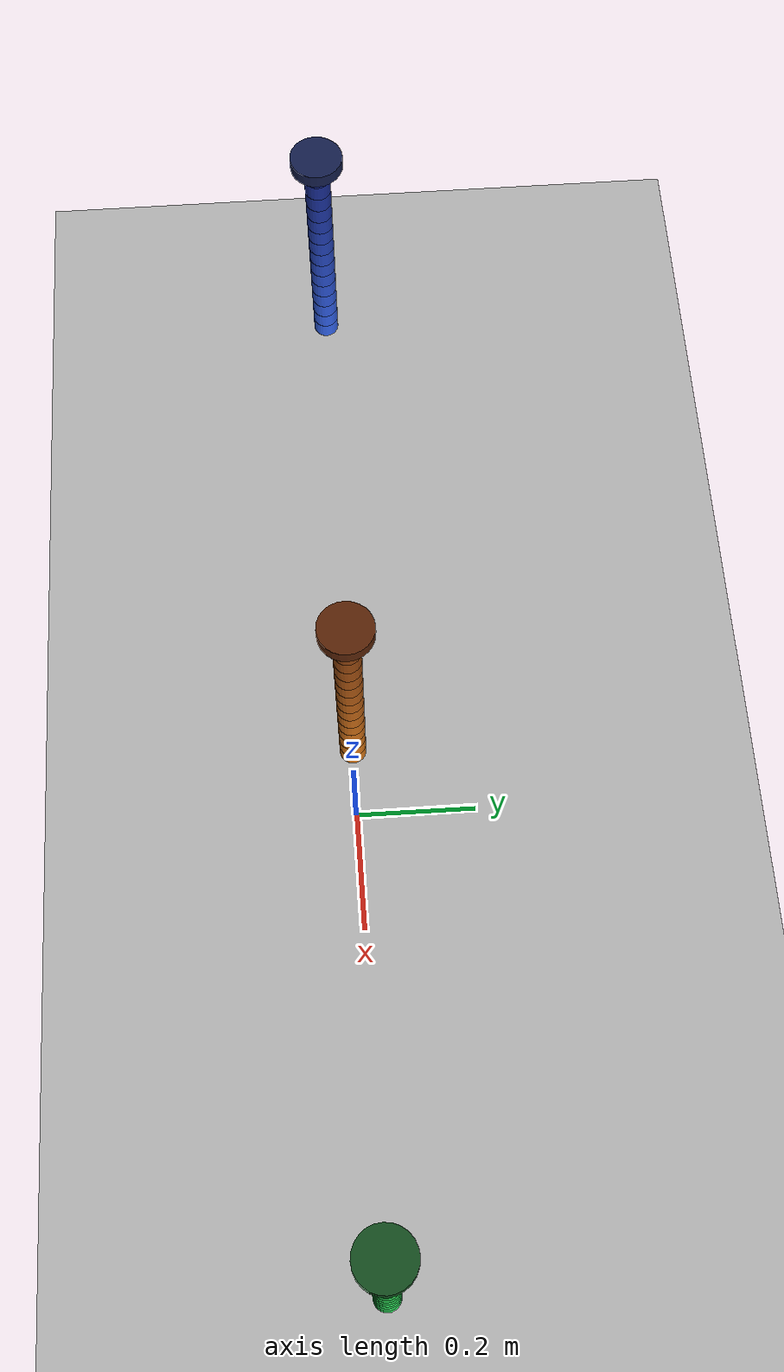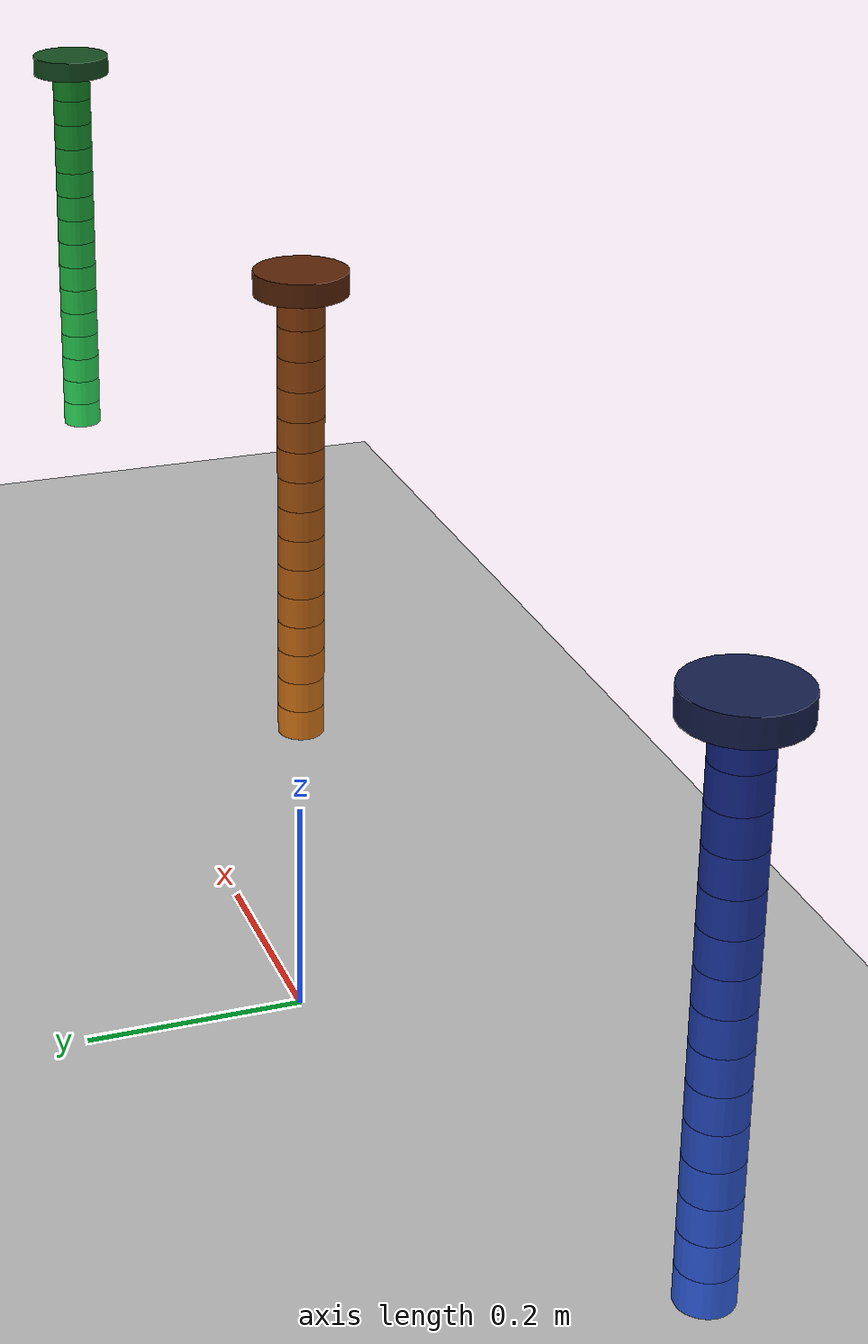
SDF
<?xml version="1.0" encoding="UTF-8"?>
<sdf version="1.9">
  <world name="continuum_arm_side_by_side">
    <physics type="ode">
      <max_step_size>0.001</max_step_size>
      <real_time_factor>1.0</real_time_factor>
      <real_time_update_rate>1000</real_time_update_rate>
    </physics>
    <plugin name="gz::sim::systems::Physics" filename="gz-sim-physics-system"/>
    <plugin name="gz::sim::systems::UserCommands" filename="gz-sim-user-commands-system"/>
    <plugin name="gz::sim::systems::SceneBroadcaster" filename="gz-sim-scene-broadcaster-system"/>
    <plugin filename="gz-sim-pose-publisher-system" name="gz::sim::systems::PosePublisher">
      <publish_link_pose>true</publish_link_pose>
      <publish_model_pose>true</publish_model_pose>
      <use_pose_vector_msg>true</use_pose_vector_msg>
      <static_publisher>false</static_publisher>
      <update_frequency>60</update_frequency>
    </plugin>

    <gravity>0 0 -9.8</gravity>

    <light name="sun" type="directional">
      <pose>0 0 10 0 0 0</pose>
      <direction>0.3 0.3 -0.9</direction>
      <diffuse>0.9 0.9 0.9 1</diffuse>
    </light>

    <gui fullscreen="false">
      <plugin filename="MinimalScene" name="3D View">
        <gz-gui>
          <title>3D View</title>
          <property type="bool" key="showTitleBar">false</property>
          <property type="string" key="state">docked</property>
        </gz-gui>
        <engine>ogre2</engine>
        <scene>scene</scene>
        <ambient_light>0.4 0.4 0.4</ambient_light>
        <background_color>0.8 0.8 0.8</background_color>
        <camera_pose>0 -2.6 0.85 0 0.2 1.5708</camera_pose>
        <camera_clip>
          <near>0.05</near>
          <far>5000</far>
        </camera_clip>
      </plugin>
      <plugin filename="InteractiveViewControl" name="Interactive view control">
        <gz-gui>
          <property key="resizable" type="bool">false</property>
          <property key="width" type="double">5</property>
          <property key="height" type="double">5</property>
          <property key="state" type="string">floating</property>
          <property key="showTitleBar" type="bool">false</property>
        </gz-gui>
      </plugin>
      <plugin filename="GzSceneManager" name="Scene Manager">
        <gz-gui>
          <property key="resizable" type="bool">false</property>
          <property key="width" type="double">5</property>
          <property key="height" type="double">5</property>
          <property key="state" type="string">floating</property>
          <property key="showTitleBar" type="bool">false</property>
        </gz-gui>
      </plugin>
      <plugin name="World control" filename="WorldControl">
        <gz-gui>
          <title>World control</title>
          <property type="bool" key="showTitleBar">0</property>
          <property type="bool" key="resizable">0</property>
          <property type="double" key="height">72</property>
          <property type="double" key="width">121</property>
          <property type="double" key="z">1</property>
          <property type="string" key="state">floating</property>
          <anchors target="3D View">
            <line own="left" target="left"/>
            <line own="bottom" target="bottom"/>
          </anchors>
        </gz-gui>
        <play_pause>1</play_pause>
        <step>1</step>
        <start_paused>0</start_paused>
      </plugin>
      <plugin name="World stats" filename="WorldStats">
        <gz-gui>
          <title>World stats</title>
          <property type="bool" key="showTitleBar">0</property>
          <property type="bool" key="resizable">0</property>
          <property type="double" key="height">110</property>
          <property type="double" key="width">290</property>
          <property type="double" key="z">1</property>
          <property type="string" key="state">floating</property>
          <anchors target="3D View">
            <line own="right" target="right"/>
            <line own="bottom" target="bottom"/>
          </anchors>
        </gz-gui>
        <sim_time>1</sim_time>
        <real_time>1</real_time>
        <real_time_factor>1</real_time_factor>
        <iterations>1</iterations>
      </plugin>
    </gui>

    <model name="ground_plane">
      <static>true</static>
      <link name="link">
        <collision name="collision">
          <geometry><plane><normal>0 0 1</normal><size>10 10</size></plane></geometry>
        </collision>
        <visual name="visual">
          <geometry><plane><normal>0 0 1</normal><size>10 10</size></plane></geometry>
          <material><ambient>0.7 0.7 0.7 1</ambient></material>
        </visual>
      </link>
    </model>

    <model name="continuum_arm_pcc_rig">
      <pose>-0.8 0 0.7 0 0 0</pose>
      <static>false</static>
      <include merge='true'>
        <uri>model://continuum_arm_pcc</uri>
      </include>
      <joint name="world_mount_joint" type="fixed">
        <parent>world</parent>
        <child>continuum_arm_pcc/base_cyl</child>
      </joint>
    </model>

    <model name="continuum_arm_cosserat_rig">
      <pose>0 0 0.7 0 0 0</pose>
      <static>false</static>
      <include merge='true'>
        <uri>model://continuum_arm_cosserat</uri>
      </include>
      <joint name="world_mount_joint" type="fixed">
        <parent>world</parent>
        <child>continuum_arm_cosserat/base_cyl</child>
      </joint>
    </model>

    <model name="continuum_arm_rbsn_rig">
      <pose>0.8 0 0.7 0 0 0</pose>
      <static>false</static>
      <include merge='true'>
        <uri>model://continuum_arm_rbsn</uri>
      </include>
      <joint name="world_mount_joint" type="fixed">
        <parent>world</parent>
        <child>continuum_arm_rbsn/base_cyl</child>
      </joint>
    </model>
  </world>
</sdf>

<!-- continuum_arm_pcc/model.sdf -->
<sdf version='1.9'>
  <model name='continuum_arm_pcc'>
    <self_collide>false</self_collide>
    <static>false</static>

    <link name="continuum_arm_pcc/base_cyl">
      <pose>0 0 -0.01000 0 0 0</pose>
      <gravity>true</gravity>
      <self_collide>false</self_collide>
      <velocity_decay/>
      <inertial>
        <mass>0.078431</mass>
        <inertia>
          <ixx>3.398693e-05</ixx>
          <iyy>3.398693e-05</iyy>
          <izz>6.274510e-05</izz>
        </inertia>
      </inertial>
      <collision name="continuum_arm_pcc/base_cyl_collision">
        <geometry>
          <cylinder><radius>0.04</radius><length>0.02</length></cylinder>
        </geometry>
      </collision>
      <visual name="continuum_arm_pcc/base_cyl_visual">
        <geometry>
          <cylinder><radius>0.04</radius><length>0.02</length></cylinder>
        </geometry>
        <material>
          <ambient>0.05 0.08 0.20 1</ambient>
          <diffuse>0.08 0.12 0.30 1</diffuse>
          <specular>0.2 0.2 0.2 1</specular>
        </material>
      </visual>
    </link>
    <!-- Segment 1/15 -->
    <link name="continuum_arm_pcc/segment_1">
      <pose>0 0 -0.03333 0 0 0</pose>
      <gravity>true</gravity>
      <self_collide>false</self_collide>
      <velocity_decay/>
      <inertial>
        <mass>0.011438</mass>
        <inertia>
          <ixx>2.464975e-06</ixx>
          <iyy>2.464975e-06</iyy>
          <izz>3.574346e-06</izz>
        </inertia>
      </inertial>
      <collision name="continuum_arm_pcc/segment_1_collision">
        <geometry>
          <cylinder><radius>0.02</radius><length>0.02666666666666667</length></cylinder>
        </geometry>
      </collision>
      <visual name="continuum_arm_pcc/segment_1_visual">
        <geometry>
          <cylinder><radius>0.02</radius><length>0.02666666666666667</length></cylinder>
        </geometry>
        <material>
          <ambient>0.050 0.080 0.350 1</ambient>
          <diffuse>0.080 0.150 0.550 1</diffuse>
          <specular>0.2 0.2 0.2 1</specular>
        </material>
      </visual>
    </link>
    <joint name="continuum_arm_pcc/joint_1" type="universal">
      <parent>continuum_arm_pcc/base_cyl</parent>
      <child>continuum_arm_pcc/segment_1</child>
      <pose>0 0 0.01333 0 0 0</pose>
      <axis>
        <xyz>1 0 0</xyz>
        <limit>
          <lower>-0.8</lower>
          <upper>0.8</upper>
          <effort>0.24</effort>
          <velocity>5.0</velocity>
        </limit>
        <dynamics>
          <spring_stiffness>1.61068</spring_stiffness>
          <spring_reference>0.0</spring_reference>
          <damping>0.08</damping>
        </dynamics>
      </axis>
      <axis2>
        <xyz>0 1 0</xyz>
        <limit>
          <lower>-0.8</lower>
          <upper>0.8</upper>
          <effort>0.24</effort>
          <velocity>5.0</velocity>
        </limit>
        <dynamics>
          <spring_stiffness>1.61068</spring_stiffness>
          <spring_reference>0.0</spring_reference>
          <damping>0.08</damping>
        </dynamics>
      </axis2>
    </joint>
    <!-- Segment 2/15 -->
    <link name="continuum_arm_pcc/segment_2">
      <pose>0 0 -0.06000 0 0 0</pose>
      <gravity>true</gravity>
      <self_collide>false</self_collide>
      <velocity_decay/>
      <inertial>
        <mass>0.011438</mass>
        <inertia>
          <ixx>2.464975e-06</ixx>
          <iyy>2.464975e-06</iyy>
          <izz>3.574346e-06</izz>
        </inertia>
      </inertial>
      <collision name="continuum_arm_pcc/segment_2_collision">
        <geometry>
          <cylinder><radius>0.02</radius><length>0.02666666666666667</length></cylinder>
        </geometry>
      </collision>
      <visual name="continuum_arm_pcc/segment_2_visual">
        <geometry>
          <cylinder><radius>0.02</radius><length>0.02666666666666667</length></cylinder>
        </geometry>
        <material>
          <ambient>0.057 0.093 0.382 1</ambient>
          <diffuse>0.089 0.168 0.579 1</diffuse>
          <specular>0.2 0.2 0.2 1</specular>
        </material>
      </visual>
    </link>
    <joint name="continuum_arm_pcc/joint_2" type="universal">
      <parent>continuum_arm_pcc/segment_1</parent>
      <child>continuum_arm_pcc/segment_2</child>
      <pose>0 0 0.01333 0 0 0</pose>
      <axis>
        <xyz>1 0 0</xyz>
        <limit>
          <lower>-0.8</lower>
          <upper>0.8</upper>
          <effort>0.24</effort>
          <velocity>5.0</velocity>
        </limit>
        <dynamics>
          <spring_stiffness>1.61068</spring_stiffness>
          <spring_reference>0.0</spring_reference>
          <damping>0.08</damping>
        </dynamics>
      </axis>
      <axis2>
        <xyz>0 1 0</xyz>
        <limit>
          <lower>-0.8</lower>
          <upper>0.8</upper>
          <effort>0.24</effort>
          <velocity>5.0</velocity>
        </limit>
        <dynamics>
          <spring_stiffness>1.61068</spring_stiffness>
          <spring_reference>0.0</spring_reference>
          <damping>0.08</damping>
        </dynamics>
      </axis2>
    </joint>
    <!-- Segment 3/15 -->
    <link name="continuum_arm_pcc/segment_3">
      <pose>0 0 -0.08667 0 0 0</pose>
      <gravity>true</gravity>
      <self_collide>false</self_collide>
      <velocity_decay/>
      <inertial>
        <mass>0.011438</mass>
        <inertia>
          <ixx>2.464975e-06</ixx>
          <iyy>2.464975e-06</iyy>
          <izz>3.574346e-06</izz>
        </inertia>
      </inertial>
      <collision name="continuum_arm_pcc/segment_3_collision">
        <geometry>
          <cylinder><radius>0.02</radius><length>0.02666666666666667</length></cylinder>
        </geometry>
      </collision>
      <visual name="continuum_arm_pcc/segment_3_visual">
        <geometry>
          <cylinder><radius>0.02</radius><length>0.02666666666666667</length></cylinder>
        </geometry>
        <material>
          <ambient>0.064 0.106 0.414 1</ambient>
          <diffuse>0.097 0.186 0.607 1</diffuse>
          <specular>0.2 0.2 0.2 1</specular>
        </material>
      </visual>
    </link>
    <joint name="continuum_arm_pcc/joint_3" type="universal">
      <parent>continuum_arm_pcc/segment_2</parent>
      <child>continuum_arm_pcc/segment_3</child>
      <pose>0 0 0.01333 0 0 0</pose>
      <axis>
        <xyz>1 0 0</xyz>
        <limit>
          <lower>-0.8</lower>
          <upper>0.8</upper>
          <effort>0.24</effort>
          <velocity>5.0</velocity>
        </limit>
        <dynamics>
          <spring_stiffness>1.61068</spring_stiffness>
          <spring_reference>0.0</spring_reference>
          <damping>0.08</damping>
        </dynamics>
      </axis>
      <axis2>
        <xyz>0 1 0</xyz>
        <limit>
          <lower>-0.8</lower>
          <upper>0.8</upper>
          <effort>0.24</effort>
          <velocity>5.0</velocity>
        </limit>
        <dynamics>
          <spring_stiffness>1.61068</spring_stiffness>
          <spring_reference>0.0</spring_reference>
          <damping>0.08</damping>
        </dynamics>
      </axis2>
    </joint>
    <!-- Segment 4/15 -->
    <link name="continuum_arm_pcc/segment_4">
      <pose>0 0 -0.11333 0 0 0</pose>
      <gravity>true</gravity>
      <self_collide>false</self_collide>
      <velocity_decay/>
      <inertial>
        <mass>0.011438</mass>
        <inertia>
          <ixx>2.464975e-06</ixx>
          <iyy>2.464975e-06</iyy>
          <izz>3.574346e-06</izz>
        </inertia>
      </inertial>
      <collision name="continuum_arm_pcc/segment_4_collision">
        <geometry>
          <cylinder><radius>0.02</radius><length>0.02666666666666667</length></cylinder>
        </geometry>
      </collision>
      <visual name="continuum_arm_pcc/segment_4_visual">
        <geometry>
          <cylinder><radius>0.02</radius><length>0.02666666666666667</length></cylinder>
        </geometry>
        <material>
          <ambient>0.071 0.119 0.446 1</ambient>
          <diffuse>0.106 0.204 0.636 1</diffuse>
          <specular>0.2 0.2 0.2 1</specular>
        </material>
      </visual>
    </link>
    <joint name="continuum_arm_pcc/joint_4" type="universal">
      <parent>continuum_arm_pcc/segment_3</parent>
      <child>continuum_arm_pcc/segment_4</child>
      <pose>0 0 0.01333 0 0 0</pose>
      <axis>
        <xyz>1 0 0</xyz>
        <limit>
          <lower>-0.8</lower>
          <upper>0.8</upper>
          <effort>0.24</effort>
          <velocity>5.0</velocity>
        </limit>
        <dynamics>
          <spring_stiffness>1.61068</spring_stiffness>
          <spring_reference>0.0</spring_reference>
          <damping>0.08</damping>
        </dynamics>
      </axis>
      <axis2>
        <xyz>0 1 0</xyz>
        <limit>
          <lower>-0.8</lower>
          <upper>0.8</upper>
          <effort>0.24</effort>
          <velocity>5.0</velocity>
        </limit>
        <dynamics>
          <spring_stiffness>1.61068</spring_stiffness>
          <spring_reference>0.0</spring_reference>
          <damping>0.08</damping>
        </dynamics>
      </axis2>
    </joint>
    <!-- Segment 5/15 -->
    <link name="continuum_arm_pcc/segment_5">
      <pose>0 0 -0.14000 0 0 0</pose>
      <gravity>true</gravity>
      <self_collide>false</self_collide>
      <velocity_decay/>
      <inertial>
        <mass>0.011438</mass>
        <inertia>
          <ixx>2.464975e-06</ixx>
          <iyy>2.464975e-06</iyy>
          <izz>3.574346e-06</izz>
        </inertia>
      </inertial>
      <collision name="continuum_arm_pcc/segment_5_collision">
        <geometry>
          <cylinder><radius>0.02</radius><length>0.02666666666666667</length></cylinder>
        </geometry>
      </collision>
      <visual name="continuum_arm_pcc/segment_5_visual">
        <geometry>
          <cylinder><radius>0.02</radius><length>0.02666666666666667</length></cylinder>
        </geometry>
        <material>
          <ambient>0.079 0.131 0.479 1</ambient>
          <diffuse>0.114 0.221 0.664 1</diffuse>
          <specular>0.2 0.2 0.2 1</specular>
        </material>
      </visual>
    </link>
    <joint name="continuum_arm_pcc/joint_5" type="universal">
      <parent>continuum_arm_pcc/segment_4</parent>
      <child>continuum_arm_pcc/segment_5</child>
      <pose>0 0 0.01333 0 0 0</pose>
      <axis>
        <xyz>1 0 0</xyz>
        <limit>
          <lower>-0.8</lower>
          <upper>0.8</upper>
          <effort>0.24</effort>
          <velocity>5.0</velocity>
        </limit>
        <dynamics>
          <spring_stiffness>1.61068</spring_stiffness>
          <spring_reference>0.0</spring_reference>
          <damping>0.08</damping>
        </dynamics>
      </axis>
      <axis2>
        <xyz>0 1 0</xyz>
        <limit>
          <lower>-0.8</lower>
          <upper>0.8</upper>
          <effort>0.24</effort>
          <velocity>5.0</velocity>
        </limit>
        <dynamics>
          <spring_stiffness>1.61068</spring_stiffness>
          <spring_reference>0.0</spring_reference>
          <damping>0.08</damping>
        </dynamics>
      </axis2>
    </joint>
    <!-- Segment 6/15 -->
    <link name="continuum_arm_pcc/segment_6">
      <pose>0 0 -0.16667 0 0 0</pose>
      <gravity>true</gravity>
      <self_collide>false</self_collide>
      <velocity_decay/>
      <inertial>
        <mass>0.011438</mass>
        <inertia>
          <ixx>2.464975e-06</ixx>
          <iyy>2.464975e-06</iyy>
          <izz>3.574346e-06</izz>
        </inertia>
      </inertial>
      <collision name="continuum_arm_pcc/segment_6_collision">
        <geometry>
          <cylinder><radius>0.02</radius><length>0.02666666666666667</length></cylinder>
        </geometry>
      </collision>
      <visual name="continuum_arm_pcc/segment_6_visual">
        <geometry>
          <cylinder><radius>0.02</radius><length>0.02666666666666667</length></cylinder>
        </geometry>
        <material>
          <ambient>0.086 0.144 0.511 1</ambient>
          <diffuse>0.123 0.239 0.693 1</diffuse>
          <specular>0.2 0.2 0.2 1</specular>
        </material>
      </visual>
    </link>
    <joint name="continuum_arm_pcc/joint_6" type="universal">
      <parent>continuum_arm_pcc/segment_5</parent>
      <child>continuum_arm_pcc/segment_6</child>
      <pose>0 0 0.01333 0 0 0</pose>
      <axis>
        <xyz>1 0 0</xyz>
        <limit>
          <lower>-0.8</lower>
          <upper>0.8</upper>
          <effort>0.24</effort>
          <velocity>5.0</velocity>
        </limit>
        <dynamics>
          <spring_stiffness>1.61068</spring_stiffness>
          <spring_reference>0.0</spring_reference>
          <damping>0.08</damping>
        </dynamics>
      </axis>
      <axis2>
        <xyz>0 1 0</xyz>
        <limit>
          <lower>-0.8</lower>
          <upper>0.8</upper>
          <effort>0.24</effort>
          <velocity>5.0</velocity>
        </limit>
        <dynamics>
          <spring_stiffness>1.61068</spring_stiffness>
          <spring_reference>0.0</spring_reference>
          <damping>0.08</damping>
        </dynamics>
      </axis2>
    </joint>
    <!-- Segment 7/15 -->
    <link name="continuum_arm_pcc/segment_7">
      <pose>0 0 -0.19333 0 0 0</pose>
      <gravity>true</gravity>
      <self_collide>false</self_collide>
      <velocity_decay/>
      <inertial>
        <mass>0.011438</mass>
        <inertia>
          <ixx>2.464975e-06</ixx>
          <iyy>2.464975e-06</iyy>
          <izz>3.574346e-06</izz>
        </inertia>
      </inertial>
      <collision name="continuum_arm_pcc/segment_7_collision">
        <geometry>
          <cylinder><radius>0.02</radius><length>0.02666666666666667</length></cylinder>
        </geometry>
      </collision>
      <visual name="continuum_arm_pcc/segment_7_visual">
        <geometry>
          <cylinder><radius>0.02</radius><length>0.02666666666666667</length></cylinder>
        </geometry>
        <material>
          <ambient>0.093 0.157 0.543 1</ambient>
          <diffuse>0.131 0.257 0.721 1</diffuse>
          <specular>0.2 0.2 0.2 1</specular>
        </material>
      </visual>
    </link>
    <joint name="continuum_arm_pcc/joint_7" type="universal">
      <parent>continuum_arm_pcc/segment_6</parent>
      <child>continuum_arm_pcc/segment_7</child>
      <pose>0 0 0.01333 0 0 0</pose>
      <axis>
        <xyz>1 0 0</xyz>
        <limit>
          <lower>-0.8</lower>
          <upper>0.8</upper>
          <effort>0.24</effort>
          <velocity>5.0</velocity>
        </limit>
        <dynamics>
          <spring_stiffness>1.61068</spring_stiffness>
          <spring_reference>0.0</spring_reference>
          <damping>0.08</damping>
        </dynamics>
      </axis>
      <axis2>
        <xyz>0 1 0</xyz>
        <limit>
          <lower>-0.8</lower>
          <upper>0.8</upper>
          <effort>0.24</effort>
          <velocity>5.0</velocity>
        </limit>
        <dynamics>
          <spring_stiffness>1.61068</spring_stiffness>
          <spring_reference>0.0</spring_reference>
          <damping>0.08</damping>
        </dynamics>
      </axis2>
    </joint>
    <!-- Segment 8/15 -->
    <link name="continuum_arm_pcc/segment_8">
      <pose>0 0 -0.22000 0 0 0</pose>
      <gravity>true</gravity>
      <self_collide>false</self_collide>
      <velocity_decay/>
      <inertial>
        <mass>0.011438</mass>
        <inertia>
          <ixx>2.464975e-06</ixx>
          <iyy>2.464975e-06</iyy>
          <izz>3.574346e-06</izz>
        </inertia>
      </inertial>
      <collision name="continuum_arm_pcc/segment_8_collision">
        <geometry>
          <cylinder><radius>0.02</radius><length>0.02666666666666667</length></cylinder>
        </geometry>
      </collision>
      <visual name="continuum_arm_pcc/segment_8_visual">
        <geometry>
          <cylinder><radius>0.02</radius><length>0.02666666666666667</length></cylinder>
        </geometry>
        <material>
          <ambient>0.100 0.170 0.575 1</ambient>
          <diffuse>0.140 0.275 0.750 1</diffuse>
          <specular>0.2 0.2 0.2 1</specular>
        </material>
      </visual>
    </link>
    <joint name="continuum_arm_pcc/joint_8" type="universal">
      <parent>continuum_arm_pcc/segment_7</parent>
      <child>continuum_arm_pcc/segment_8</child>
      <pose>0 0 0.01333 0 0 0</pose>
      <axis>
        <xyz>1 0 0</xyz>
        <limit>
          <lower>-0.8</lower>
          <upper>0.8</upper>
          <effort>0.24</effort>
          <velocity>5.0</velocity>
        </limit>
        <dynamics>
          <spring_stiffness>1.61068</spring_stiffness>
          <spring_reference>0.0</spring_reference>
          <damping>0.08</damping>
        </dynamics>
      </axis>
      <axis2>
        <xyz>0 1 0</xyz>
        <limit>
          <lower>-0.8</lower>
          <upper>0.8</upper>
          <effort>0.24</effort>
          <velocity>5.0</velocity>
        </limit>
        <dynamics>
          <spring_stiffness>1.61068</spring_stiffness>
          <spring_reference>0.0</spring_reference>
          <damping>0.08</damping>
        </dynamics>
      </axis2>
    </joint>
    <!-- Segment 9/15 -->
    <link name="continuum_arm_pcc/segment_9">
      <pose>0 0 -0.24667 0 0 0</pose>
      <gravity>true</gravity>
      <self_collide>false</self_collide>
      <velocity_decay/>
      <inertial>
        <mass>0.011438</mass>
        <inertia>
          <ixx>2.464975e-06</ixx>
          <iyy>2.464975e-06</iyy>
          <izz>3.574346e-06</izz>
        </inertia>
      </inertial>
      <collision name="continuum_arm_pcc/segment_9_collision">
        <geometry>
          <cylinder><radius>0.02</radius><length>0.02666666666666667</length></cylinder>
        </geometry>
      </collision>
      <visual name="continuum_arm_pcc/segment_9_visual">
        <geometry>
          <cylinder><radius>0.02</radius><length>0.02666666666666667</length></cylinder>
        </geometry>
        <material>
          <ambient>0.107 0.183 0.607 1</ambient>
          <diffuse>0.149 0.293 0.779 1</diffuse>
          <specular>0.2 0.2 0.2 1</specular>
        </material>
      </visual>
    </link>
    <joint name="continuum_arm_pcc/joint_9" type="universal">
      <parent>continuum_arm_pcc/segment_8</parent>
      <child>continuum_arm_pcc/segment_9</child>
      <pose>0 0 0.01333 0 0 0</pose>
      <axis>
        <xyz>1 0 0</xyz>
        <limit>
          <lower>-0.8</lower>
          <upper>0.8</upper>
          <effort>0.24</effort>
          <velocity>5.0</velocity>
        </limit>
        <dynamics>
          <spring_stiffness>1.61068</spring_stiffness>
          <spring_reference>0.0</spring_reference>
          <damping>0.08</damping>
        </dynamics>
      </axis>
      <axis2>
        <xyz>0 1 0</xyz>
        <limit>
          <lower>-0.8</lower>
          <upper>0.8</upper>
          <effort>0.24</effort>
          <velocity>5.0</velocity>
        </limit>
        <dynamics>
          <spring_stiffness>1.61068</spring_stiffness>
          <spring_reference>0.0</spring_reference>
          <damping>0.08</damping>
        </dynamics>
      </axis2>
    </joint>
    <!-- Segment 10/15 -->
    <link name="continuum_arm_pcc/segment_10">
      <pose>0 0 -0.27333 0 0 0</pose>
      <gravity>true</gravity>
      <self_collide>false</self_collide>
      <velocity_decay/>
      <inertial>
        <mass>0.011438</mass>
        <inertia>
          <ixx>2.464975e-06</ixx>
          <iyy>2.464975e-06</iyy>
          <izz>3.574346e-06</izz>
        </inertia>
      </inertial>
      <collision name="continuum_arm_pcc/segment_10_collision">
        <geometry>
          <cylinder><radius>0.02</radius><length>0.02666666666666667</length></cylinder>
        </geometry>
      </collision>
      <visual name="continuum_arm_pcc/segment_10_visual">
        <geometry>
          <cylinder><radius>0.02</radius><length>0.02666666666666667</length></cylinder>
        </geometry>
        <material>
          <ambient>0.114 0.196 0.639 1</ambient>
          <diffuse>0.157 0.311 0.807 1</diffuse>
          <specular>0.2 0.2 0.2 1</specular>
        </material>
      </visual>
    </link>
    <joint name="continuum_arm_pcc/joint_10" type="universal">
      <parent>continuum_arm_pcc/segment_9</parent>
      <child>continuum_arm_pcc/segment_10</child>
      <pose>0 0 0.01333 0 0 0</pose>
      <axis>
        <xyz>1 0 0</xyz>
        <limit>
          <lower>-0.8</lower>
          <upper>0.8</upper>
          <effort>0.24</effort>
          <velocity>5.0</velocity>
        </limit>
        <dynamics>
          <spring_stiffness>1.61068</spring_stiffness>
          <spring_reference>0.0</spring_reference>
          <damping>0.08</damping>
        </dynamics>
      </axis>
      <axis2>
        <xyz>0 1 0</xyz>
        <limit>
          <lower>-0.8</lower>
          <upper>0.8</upper>
          <effort>0.24</effort>
          <velocity>5.0</velocity>
        </limit>
        <dynamics>
          <spring_stiffness>1.61068</spring_stiffness>
          <spring_reference>0.0</spring_reference>
          <damping>0.08</damping>
        </dynamics>
      </axis2>
    </joint>
    <!-- Segment 11/15 -->
    <link name="continuum_arm_pcc/segment_11">
      <pose>0 0 -0.30000 0 0 0</pose>
      <gravity>true</gravity>
      <self_collide>false</self_collide>
      <velocity_decay/>
      <inertial>
        <mass>0.011438</mass>
        <inertia>
          <ixx>2.464975e-06</ixx>
          <iyy>2.464975e-06</iyy>
          <izz>3.574346e-06</izz>
        </inertia>
      </inertial>
      <collision name="continuum_arm_pcc/segment_11_collision">
        <geometry>
          <cylinder><radius>0.02</radius><length>0.02666666666666667</length></cylinder>
        </geometry>
      </collision>
      <visual name="continuum_arm_pcc/segment_11_visual">
        <geometry>
          <cylinder><radius>0.02</radius><length>0.02666666666666667</length></cylinder>
        </geometry>
        <material>
          <ambient>0.121 0.209 0.671 1</ambient>
          <diffuse>0.166 0.329 0.836 1</diffuse>
          <specular>0.2 0.2 0.2 1</specular>
        </material>
      </visual>
    </link>
    <joint name="continuum_arm_pcc/joint_11" type="universal">
      <parent>continuum_arm_pcc/segment_10</parent>
      <child>continuum_arm_pcc/segment_11</child>
      <pose>0 0 0.01333 0 0 0</pose>
      <axis>
        <xyz>1 0 0</xyz>
        <limit>
          <lower>-0.8</lower>
          <upper>0.8</upper>
          <effort>0.24</effort>
          <velocity>5.0</velocity>
        </limit>
        <dynamics>
          <spring_stiffness>1.61068</spring_stiffness>
          <spring_reference>0.0</spring_reference>
          <damping>0.08</damping>
        </dynamics>
      </axis>
      <axis2>
        <xyz>0 1 0</xyz>
        <limit>
          <lower>-0.8</lower>
          <upper>0.8</upper>
          <effort>0.24</effort>
          <velocity>5.0</velocity>
        </limit>
        <dynamics>
          <spring_stiffness>1.61068</spring_stiffness>
          <spring_reference>0.0</spring_reference>
          <damping>0.08</damping>
        </dynamics>
      </axis2>
    </joint>
    <!-- Segment 12/15 -->
    <link name="continuum_arm_pcc/segment_12">
      <pose>0 0 -0.32667 0 0 0</pose>
      <gravity>true</gravity>
      <self_collide>false</self_collide>
      <velocity_decay/>
      <inertial>
        <mass>0.011438</mass>
        <inertia>
          <ixx>2.464975e-06</ixx>
          <iyy>2.464975e-06</iyy>
          <izz>3.574346e-06</izz>
        </inertia>
      </inertial>
      <collision name="continuum_arm_pcc/segment_12_collision">
        <geometry>
          <cylinder><radius>0.02</radius><length>0.02666666666666667</length></cylinder>
        </geometry>
      </collision>
      <visual name="continuum_arm_pcc/segment_12_visual">
        <geometry>
          <cylinder><radius>0.02</radius><length>0.02666666666666667</length></cylinder>
        </geometry>
        <material>
          <ambient>0.129 0.221 0.704 1</ambient>
          <diffuse>0.174 0.346 0.864 1</diffuse>
          <specular>0.2 0.2 0.2 1</specular>
        </material>
      </visual>
    </link>
    <joint name="continuum_arm_pcc/joint_12" type="universal">
      <parent>continuum_arm_pcc/segment_11</parent>
      <child>continuum_arm_pcc/segment_12</child>
      <pose>0 0 0.01333 0 0 0</pose>
      <axis>
        <xyz>1 0 0</xyz>
        <limit>
          <lower>-0.8</lower>
          <upper>0.8</upper>
          <effort>0.24</effort>
          <velocity>5.0</velocity>
        </limit>
        <dynamics>
          <spring_stiffness>1.61068</spring_stiffness>
          <spring_reference>0.0</spring_reference>
          <damping>0.08</damping>
        </dynamics>
      </axis>
      <axis2>
        <xyz>0 1 0</xyz>
        <limit>
          <lower>-0.8</lower>
          <upper>0.8</upper>
          <effort>0.24</effort>
          <velocity>5.0</velocity>
        </limit>
        <dynamics>
          <spring_stiffness>1.61068</spring_stiffness>
          <spring_reference>0.0</spring_reference>
          <damping>0.08</damping>
        </dynamics>
      </axis2>
    </joint>
    <!-- Segment 13/15 -->
    <link name="continuum_arm_pcc/segment_13">
      <pose>0 0 -0.35333 0 0 0</pose>
      <gravity>true</gravity>
      <self_collide>false</self_collide>
      <velocity_decay/>
      <inertial>
        <mass>0.011438</mass>
        <inertia>
          <ixx>2.464975e-06</ixx>
          <iyy>2.464975e-06</iyy>
          <izz>3.574346e-06</izz>
        </inertia>
      </inertial>
      <collision name="continuum_arm_pcc/segment_13_collision">
        <geometry>
          <cylinder><radius>0.02</radius><length>0.02666666666666667</length></cylinder>
        </geometry>
      </collision>
      <visual name="continuum_arm_pcc/segment_13_visual">
        <geometry>
          <cylinder><radius>0.02</radius><length>0.02666666666666667</length></cylinder>
        </geometry>
        <material>
          <ambient>0.136 0.234 0.736 1</ambient>
          <diffuse>0.183 0.364 0.893 1</diffuse>
          <specular>0.2 0.2 0.2 1</specular>
        </material>
      </visual>
    </link>
    <joint name="continuum_arm_pcc/joint_13" type="universal">
      <parent>continuum_arm_pcc/segment_12</parent>
      <child>continuum_arm_pcc/segment_13</child>
      <pose>0 0 0.01333 0 0 0</pose>
      <axis>
        <xyz>1 0 0</xyz>
        <limit>
          <lower>-0.8</lower>
          <upper>0.8</upper>
          <effort>0.24</effort>
          <velocity>5.0</velocity>
        </limit>
        <dynamics>
          <spring_stiffness>1.61068</spring_stiffness>
          <spring_reference>0.0</spring_reference>
          <damping>0.08</damping>
        </dynamics>
      </axis>
      <axis2>
        <xyz>0 1 0</xyz>
        <limit>
          <lower>-0.8</lower>
          <upper>0.8</upper>
          <effort>0.24</effort>
          <velocity>5.0</velocity>
        </limit>
        <dynamics>
          <spring_stiffness>1.61068</spring_stiffness>
          <spring_reference>0.0</spring_reference>
          <damping>0.08</damping>
        </dynamics>
      </axis2>
    </joint>
    <!-- Segment 14/15 -->
    <link name="continuum_arm_pcc/segment_14">
      <pose>0 0 -0.38000 0 0 0</pose>
      <gravity>true</gravity>
      <self_collide>false</self_collide>
      <velocity_decay/>
      <inertial>
        <mass>0.011438</mass>
        <inertia>
          <ixx>2.464975e-06</ixx>
          <iyy>2.464975e-06</iyy>
          <izz>3.574346e-06</izz>
        </inertia>
      </inertial>
      <collision name="continuum_arm_pcc/segment_14_collision">
        <geometry>
          <cylinder><radius>0.02</radius><length>0.02666666666666667</length></cylinder>
        </geometry>
      </collision>
      <visual name="continuum_arm_pcc/segment_14_visual">
        <geometry>
          <cylinder><radius>0.02</radius><length>0.02666666666666667</length></cylinder>
        </geometry>
        <material>
          <ambient>0.143 0.247 0.768 1</ambient>
          <diffuse>0.191 0.382 0.921 1</diffuse>
          <specular>0.2 0.2 0.2 1</specular>
        </material>
      </visual>
    </link>
    <joint name="continuum_arm_pcc/joint_14" type="universal">
      <parent>continuum_arm_pcc/segment_13</parent>
      <child>continuum_arm_pcc/segment_14</child>
      <pose>0 0 0.01333 0 0 0</pose>
      <axis>
        <xyz>1 0 0</xyz>
        <limit>
          <lower>-0.8</lower>
          <upper>0.8</upper>
          <effort>0.24</effort>
          <velocity>5.0</velocity>
        </limit>
        <dynamics>
          <spring_stiffness>1.61068</spring_stiffness>
          <spring_reference>0.0</spring_reference>
          <damping>0.08</damping>
        </dynamics>
      </axis>
      <axis2>
        <xyz>0 1 0</xyz>
        <limit>
          <lower>-0.8</lower>
          <upper>0.8</upper>
          <effort>0.24</effort>
          <velocity>5.0</velocity>
        </limit>
        <dynamics>
          <spring_stiffness>1.61068</spring_stiffness>
          <spring_reference>0.0</spring_reference>
          <damping>0.08</damping>
        </dynamics>
      </axis2>
    </joint>
    <!-- Segment 15/15 -->
    <link name="continuum_arm_pcc/segment_15">
      <pose>0 0 -0.40667 0 0 0</pose>
      <gravity>true</gravity>
      <self_collide>false</self_collide>
      <velocity_decay/>
      <inertial>
        <mass>0.011438</mass>
        <inertia>
          <ixx>2.464975e-06</ixx>
          <iyy>2.464975e-06</iyy>
          <izz>3.574346e-06</izz>
        </inertia>
      </inertial>
      <collision name="continuum_arm_pcc/segment_15_collision">
        <geometry>
          <cylinder><radius>0.02</radius><length>0.02666666666666667</length></cylinder>
        </geometry>
      </collision>
      <visual name="continuum_arm_pcc/segment_15_visual">
        <geometry>
          <cylinder><radius>0.02</radius><length>0.02666666666666667</length></cylinder>
        </geometry>
        <material>
          <ambient>0.150 0.260 0.800 1</ambient>
          <diffuse>0.200 0.400 0.950 1</diffuse>
          <specular>0.2 0.2 0.2 1</specular>
        </material>
      </visual>
    </link>
    <joint name="continuum_arm_pcc/joint_15" type="universal">
      <parent>continuum_arm_pcc/segment_14</parent>
      <child>continuum_arm_pcc/segment_15</child>
      <pose>0 0 0.01333 0 0 0</pose>
      <axis>
        <xyz>1 0 0</xyz>
        <limit>
          <lower>-0.8</lower>
          <upper>0.8</upper>
          <effort>0.24</effort>
          <velocity>5.0</velocity>
        </limit>
        <dynamics>
          <spring_stiffness>1.61068</spring_stiffness>
          <spring_reference>0.0</spring_reference>
          <damping>0.08</damping>
        </dynamics>
      </axis>
      <axis2>
        <xyz>0 1 0</xyz>
        <limit>
          <lower>-0.8</lower>
          <upper>0.8</upper>
          <effort>0.24</effort>
          <velocity>5.0</velocity>
        </limit>
        <dynamics>
          <spring_stiffness>1.61068</spring_stiffness>
          <spring_reference>0.0</spring_reference>
          <damping>0.08</damping>
        </dynamics>
      </axis2>
    </joint>

    <plugin filename="TendonArmController" name="tendon_arm_controller::TendonArmController">
      <joint_name>continuum_arm_pcc/joint_1</joint_name>
      <joint_name>continuum_arm_pcc/joint_2</joint_name>
      <joint_name>continuum_arm_pcc/joint_3</joint_name>
      <joint_name>continuum_arm_pcc/joint_4</joint_name>
      <joint_name>continuum_arm_pcc/joint_5</joint_name>
      <joint_name>continuum_arm_pcc/joint_6</joint_name>
      <joint_name>continuum_arm_pcc/joint_7</joint_name>
      <joint_name>continuum_arm_pcc/joint_8</joint_name>
      <joint_name>continuum_arm_pcc/joint_9</joint_name>
      <joint_name>continuum_arm_pcc/joint_10</joint_name>
      <joint_name>continuum_arm_pcc/joint_11</joint_name>
      <joint_name>continuum_arm_pcc/joint_12</joint_name>
      <joint_name>continuum_arm_pcc/joint_13</joint_name>
      <joint_name>continuum_arm_pcc/joint_14</joint_name>
      <joint_name>continuum_arm_pcc/joint_15</joint_name>
      <pitch_radius>0.015</pitch_radius>
      <rest_length>0.4</rest_length>
      <position_p_gain>5.0</position_p_gain>
      <position_d_gain>0.05</position_d_gain>
      <effort_limit>0.24</effort_limit>
      <tendon_topic>/continuum_arm_pcc/tendon_cmd</tendon_topic>
      <angles_topic>/continuum_arm_pcc/bend_angles</angles_topic>
      <command_filter_omega>2.92</command_filter_omega>
      <max_tendon_rate_m_s>0.06</max_tendon_rate_m_s>
    </plugin>

    <!-- Joint state feedback (actual, physics-integrated angles), same
         pattern rigid_arm_3link uses - lets the test script verify the arm
         actually bent the way the tendon command intended. -->
    <plugin filename="gz-sim-joint-state-publisher-system" name="gz::sim::systems::JointStatePublisher">
      <topic>/continuum_arm_pcc/joint_states</topic>
      <joint_name>continuum_arm_pcc/joint_1</joint_name>
      <joint_name>continuum_arm_pcc/joint_2</joint_name>
      <joint_name>continuum_arm_pcc/joint_3</joint_name>
      <joint_name>continuum_arm_pcc/joint_4</joint_name>
      <joint_name>continuum_arm_pcc/joint_5</joint_name>
      <joint_name>continuum_arm_pcc/joint_6</joint_name>
      <joint_name>continuum_arm_pcc/joint_7</joint_name>
      <joint_name>continuum_arm_pcc/joint_8</joint_name>
      <joint_name>continuum_arm_pcc/joint_9</joint_name>
      <joint_name>continuum_arm_pcc/joint_10</joint_name>
      <joint_name>continuum_arm_pcc/joint_11</joint_name>
      <joint_name>continuum_arm_pcc/joint_12</joint_name>
      <joint_name>continuum_arm_pcc/joint_13</joint_name>
      <joint_name>continuum_arm_pcc/joint_14</joint_name>
      <joint_name>continuum_arm_pcc/joint_15</joint_name>
    </plugin>

  </model>
</sdf>
